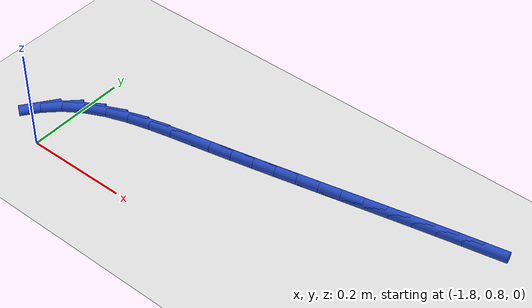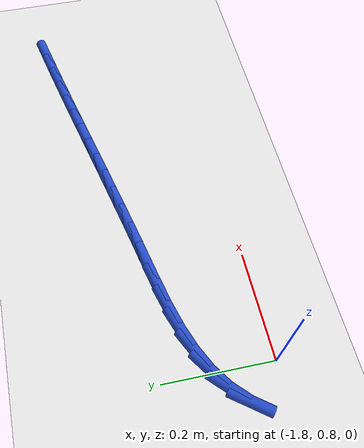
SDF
<sdf version="1.6">
 <world name="default">
  <model name="ground_plane">
   <static>1</static>
   <link name="link">
    <collision name="collision">
     <geometry><plane><normal>0 0 1</normal><size>100 100</size></plane></geometry>
     <surface><friction><ode><mu>100</mu><mu2>50</mu2></ode></friction></surface>
    </collision>
    <visual name="visual">
     <cast_shadows>0</cast_shadows>
     <geometry><plane><normal>0 0 1</normal><size>100 100</size></plane></geometry>
     <material>
      <script><uri>file://media/materials/scripts/gazebo.material</uri><name>Gazebo/WhiteGlow</name></script>
     </material>
    </visual>
   </link>
  </model>
  <model name="line">
   <link name="link_39">
    <pose>-1.034943375311212 1.092091006032116 0.01 0 1.57 0.19647220726962114</pose>
    <collision name="collision">
     <geometry><cylinder><radius>0.01</radius><length>0.08</length></cylinder></geometry>
    </collision>
    <visual name="visual">
     <material>
      <script><name>Gazebo/Blue</name><uri>file://media/materials/scripts/gazebo.material</uri></script>
     </material>
     <geometry><cylinder><radius>0.01</radius><length>0.08</length></cylinder></geometry>
    </visual>
   </link>
   <link name="link_40">
    <pose>-1.0791437507667074 1.0832933681481307 0.01 0 1.57 0.2013810168366769</pose>
    <collision name="collision">
     <geometry><cylinder><radius>0.01</radius><length>0.08</length></cylinder></geometry>
    </collision>
    <visual name="visual">
     <material>
      <script><name>Gazebo/Blue</name><uri>file://media/materials/scripts/gazebo.material</uri></script>
     </material>
     <geometry><cylinder><radius>0.01</radius><length>0.08</length></cylinder></geometry>
    </visual>
   </link>
   <link name="link_41">
    <pose>-1.1224501323341165 1.0744524481412294 0.01 0 1.57 0.2055438187705518</pose>
    <collision name="collision">
     <geometry><cylinder><radius>0.01</radius><length>0.08</length></cylinder></geometry>
    </collision>
    <visual name="visual">
     <material>
      <script><name>Gazebo/Blue</name><uri>file://media/materials/scripts/gazebo.material</uri></script>
     </material>
     <geometry><cylinder><radius>0.01</radius><length>0.08</length></cylinder></geometry>
    </visual>
   </link>
   <link name="link_42">
    <pose>-1.1650137014224726 1.0655784458124642 0.01 0 1.57 0.2088853066940639</pose>
    <collision name="collision">
     <geometry><cylinder><radius>0.01</radius><length>0.08</length></cylinder></geometry>
    </collision>
    <visual name="visual">
     <material>
      <script><name>Gazebo/Blue</name><uri>file://media/materials/scripts/gazebo.material</uri></script>
     </material>
     <geometry><cylinder><radius>0.01</radius><length>0.08</length></cylinder></geometry>
    </visual>
   </link>
   <link name="link_43">
    <pose>-1.2069858849518516 1.0566812920122384 0.01 0 1.57 0.21133761397616224</pose>
    <collision name="collision">
     <geometry><cylinder><radius>0.01</radius><length>0.08</length></cylinder></geometry>
    </collision>
    <visual name="visual">
     <material>
      <script><name>Gazebo/Blue</name><uri>file://media/materials/scripts/gazebo.material</uri></script>
     </material>
     <geometry><cylinder><radius>0.01</radius><length>0.08</length></cylinder></geometry>
    </visual>
   </link>
   <link name="link_44">
    <pose>-1.2485181098423315 1.0477709175909564 0.01 0 1.57 0.21284821752443886</pose>
    <collision name="collision">
     <geometry><cylinder><radius>0.01</radius><length>0.08</length></cylinder></geometry>
    </collision>
    <visual name="visual">
     <material>
      <script><name>Gazebo/Blue</name><uri>file://media/materials/scripts/gazebo.material</uri></script>
     </material>
     <geometry><cylinder><radius>0.01</radius><length>0.08</length></cylinder></geometry>
    </visual>
   </link>
   <link name="link_45">
    <pose>-1.289761803013988 1.0388572533990221 0.01 0 1.57 0.21338248231466686</pose>
    <collision name="collision">
     <geometry><cylinder><radius>0.01</radius><length>0.08</length></cylinder></geometry>
    </collision>
    <visual name="visual">
     <material>
      <script><name>Gazebo/Blue</name><uri>file://media/materials/scripts/gazebo.material</uri></script>
     </material>
     <geometry><cylinder><radius>0.01</radius><length>0.08</length></cylinder></geometry>
    </visual>
   </link>
   <link name="link_46">
    <pose>-1.3308683913868986 1.0299502302868395 0.01 0 1.57 0.21292542087547967</pose>
    <collision name="collision">
     <geometry><cylinder><radius>0.01</radius><length>0.08</length></cylinder></geometry>
    </collision>
    <visual name="visual">
     <material>
      <script><name>Gazebo/Blue</name><uri>file://media/materials/scripts/gazebo.material</uri></script>
     </material>
     <geometry><cylinder><radius>0.01</radius><length>0.08</length></cylinder></geometry>
    </visual>
   </link>
   <link name="link_47">
    <pose>-1.3719893018811395 1.0210597791048124 0.01 0 1.57 0.21148251123334244</pose>
    <collision name="collision">
     <geometry><cylinder><radius>0.01</radius><length>0.08</length></cylinder></geometry>
    </collision>
    <visual name="visual">
     <material>
      <script><name>Gazebo/Blue</name><uri>file://media/materials/scripts/gazebo.material</uri></script>
     </material>
     <geometry><cylinder><radius>0.01</radius><length>0.08</length></cylinder></geometry>
    </visual>
   </link>
   <link name="link_48">
    <pose>-1.4132759614167878 1.0121958307033445 0.01 0 1.57 0.20907949669364362</pose>
    <collision name="collision">
     <geometry><cylinder><radius>0.01</radius><length>0.08</length></cylinder></geometry>
    </collision>
    <visual name="visual">
     <material>
      <script><name>Gazebo/Blue</name><uri>file://media/materials/scripts/gazebo.material</uri></script>
     </material>
     <geometry><cylinder><radius>0.01</radius><length>0.08</length></cylinder></geometry>
    </visual>
   </link>
   <link name="link_49">
    <pose>-1.45487979691392 1.0033683159328401 0.01 0 1.57 0.20576118155316644</pose>
    <collision name="collision">
     <geometry><cylinder><radius>0.01</radius><length>0.08</length></cylinder></geometry>
    </collision>
    <visual name="visual">
     <material>
      <script><name>Gazebo/Blue</name><uri>file://media/materials/scripts/gazebo.material</uri></script>
     </material>
     <geometry><cylinder><radius>0.01</radius><length>0.08</length></cylinder></geometry>
    </visual>
   </link>
   <link name="link_50">
    <pose>-1.4969522352926135 0.9945871656437031 0.01 0 1.57 0.2015893260123306</pose>
    <collision name="collision">
     <geometry><cylinder><radius>0.01</radius><length>0.08</length></cylinder></geometry>
    </collision>
    <visual name="visual">
     <material>
      <script><name>Gazebo/Blue</name><uri>file://media/materials/scripts/gazebo.material</uri></script>
     </material>
     <geometry><cylinder><radius>0.01</radius><length>0.08</length></cylinder></geometry>
    </visual>
   </link>
   <link name="link_51">
    <pose>-1.5396447034729444 0.9858623106863369 0.01 0 1.57 0.1966398228140414</pose>
    <collision name="collision">
     <geometry><cylinder><radius>0.01</radius><length>0.08</length></cylinder></geometry>
    </collision>
    <visual name="visual">
     <material>
      <script><name>Gazebo/Blue</name><uri>file://media/materials/scripts/gazebo.material</uri></script>
     </material>
     <geometry><cylinder><radius>0.01</radius><length>0.08</length></cylinder></geometry>
    </visual>
   </link>
   <link name="link_52">
    <pose>-1.5831086282129405 0.9772036817717993 0.01 0 1.57 0.19546544410255354</pose>
    <collision name="collision">
     <geometry><cylinder><radius>0.01</radius><length>0.08</length></cylinder></geometry>
    </collision>
    <visual name="visual">
     <material>
      <script><name>Gazebo/Blue</name><uri>file://media/materials/scripts/gazebo.material</uri></script>
     </material>
     <geometry><cylinder><radius>0.01</radius><length>0.08</length></cylinder></geometry>
    </visual>
   </link>
   <link name="link_53">
    <pose>-1.6273008761709957 0.968453906059973 0.01 0 1.57 0.2152977972804454</pose>
    <collision name="collision">
     <geometry><cylinder><radius>0.01</radius><length>0.08</length></cylinder></geometry>
    </collision>
    <visual name="visual">
     <material>
      <script><name>Gazebo/Blue</name><uri>file://media/materials/scripts/gazebo.material</uri></script>
     </material>
     <geometry><cylinder><radius>0.01</radius><length>0.08</length></cylinder></geometry>
    </visual>
   </link>
   <link name="link_54">
    <pose>-1.6714219336706635 0.9588051941233023 0.01 0 1.57 0.26123214382009385</pose>
    <collision name="collision">
     <geometry><cylinder><radius>0.01</radius><length>0.08</length></cylinder></geometry>
    </collision>
    <visual name="visual">
     <material>
      <script><name>Gazebo/Blue</name><uri>file://media/materials/scripts/gazebo.material</uri></script>
     </material>
     <geometry><cylinder><radius>0.01</radius><length>0.08</length></cylinder></geometry>
    </visual>
   </link>
   <link name="link_55">
    <pose>-1.7144885043078126 0.9472917205183986 0.01 0 1.57 0.3363270422374548</pose>
    <collision name="collision">
     <geometry><cylinder><radius>0.01</radius><length>0.08</length></cylinder></geometry>
    </collision>
    <visual name="visual">
     <material>
      <script><name>Gazebo/Blue</name><uri>file://media/materials/scripts/gazebo.material</uri></script>
     </material>
     <geometry><cylinder><radius>0.01</radius><length>0.08</length></cylinder></geometry>
    </visual>
   </link>
   <link name="link_56">
    <pose>-1.7555172916783093 0.932947659801871 0.01 0 1.57 0.4453102789506229</pose>
    <collision name="collision">
     <geometry><cylinder><radius>0.01</radius><length>0.08</length></cylinder></geometry>
    </collision>
    <visual name="visual">
     <material>
      <script><name>Gazebo/Blue</name><uri>file://media/materials/scripts/gazebo.material</uri></script>
     </material>
     <geometry><cylinder><radius>0.01</radius><length>0.08</length></cylinder></geometry>
    </visual>
   </link>
   <link name="link_57">
    <pose>-1.79352499937802 0.9148071865303304 0.01 0 1.57 0.5927481524676262</pose>
    <collision name="collision">
     <geometry><cylinder><radius>0.01</radius><length>0.08</length></cylinder></geometry>
    </collision>
    <visual name="visual">
     <material>
      <script><name>Gazebo/Blue</name><uri>file://media/materials/scripts/gazebo.material</uri></script>
     </material>
     <geometry><cylinder><radius>0.01</radius><length>0.08</length></cylinder></geometry>
    </visual>
   </link>
   <link name="link_58">
    <pose>-1.8275283310028125 0.8919044752603865 0.01 0 1.57 0.7719658007799016</pose>
    <collision name="collision">
     <geometry><cylinder><radius>0.01</radius><length>0.08</length></cylinder></geometry>
    </collision>
    <visual name="visual">
     <material>
      <script><name>Gazebo/Blue</name><uri>file://media/materials/scripts/gazebo.material</uri></script>
     </material>
     <geometry><cylinder><radius>0.01</radius><length>0.08</length></cylinder></geometry>
    </visual>
   </link>
   <link name="link_59">
    <pose>-1.8567161494937785 0.8634904323961726 0.01 0 1.57 0.9380922472657424</pose>
    <collision name="collision">
     <geometry><cylinder><radius>0.01</radius><length>0.08</length></cylinder></geometry>
    </collision>
    <visual name="visual">
     <material>
      <script><name>Gazebo/Blue</name><uri>file://media/materials/scripts/gazebo.material</uri></script>
     </material>
     <geometry><cylinder><radius>0.01</radius><length>0.08</length></cylinder></geometry>
    </visual>
   </link>
  </model>
 </world>
</sdf>
